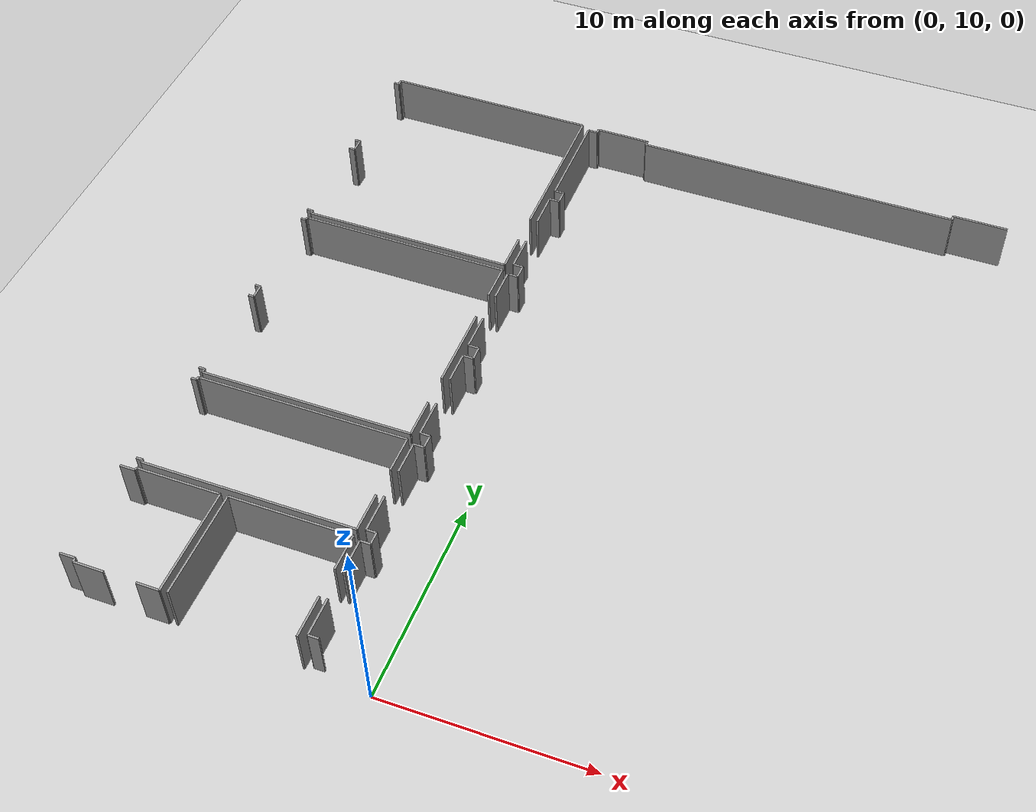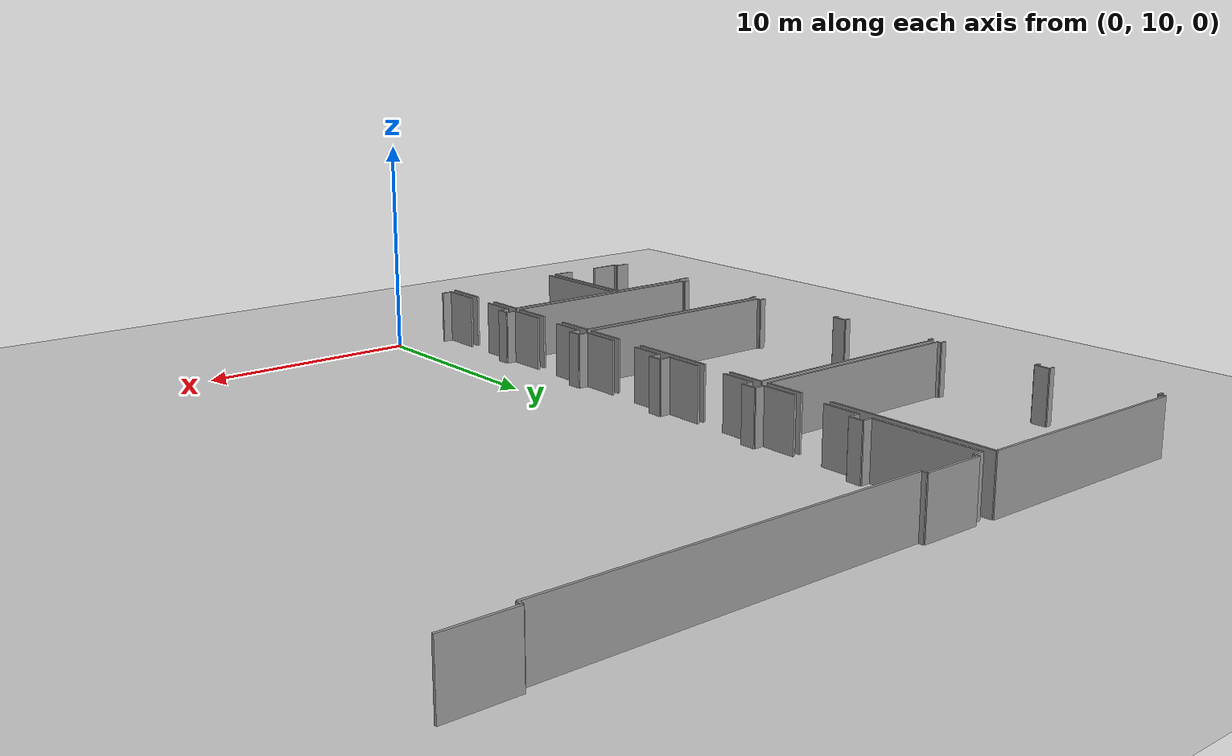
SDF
<sdf version="1.6">
 <world name="default">
  <model name="ground_plane">
   <static>1</static>
   <link name="link">
    <collision name="collision">
     <geometry><plane><normal>0 0 1</normal><size>100 100</size></plane></geometry>
     <surface><friction><ode><mu>100</mu><mu2>50</mu2></ode></friction></surface>
    </collision>
    <visual name="visual">
     <cast_shadows>0</cast_shadows>
     <geometry><plane><normal>0 0 1</normal><size>100 100</size></plane></geometry>
     <material>
      <script><uri>file://media/materials/scripts/gazebo.material</uri><name>Gazebo/Grey</name></script>
     </material>
    </visual>
   </link>
  </model>
  <model name="50015847">
   <static>1</static>
   <link name="Wall_332">
    <collision name="Wall_332_Collision">
     <geometry><box><size>0.508974424162 0.1 2.5</size></box></geometry>
     <pose>0.254487212081 0 1.25 0 0 0</pose>
    </collision>
    <visual name="Wall_332_Visual">
     <pose>0.254487212081 0 1.25 0 0 0</pose>
     <geometry><box><size>0.508974424162 0.1 2.5</size></box></geometry>
     <material>
      <script><uri>file://media/materials/scripts/gazebo.material</uri><name>Gazebo/Grey</name></script>
      <ambient>1 1 1 1</ambient>
     </material>
    </visual>
    <pose>130.048558499 -33.4761275233 0 0 0 3.14159265359</pose>
   </link>
   <link name="Wall_333">
    <collision name="Wall_333_Collision">
     <geometry><box><size>1.85386688361 0.1 2.5</size></box></geometry>
     <pose>0.926933441806 0 1.25 0 0 0</pose>
    </collision>
    <visual name="Wall_333_Visual">
     <pose>0.926933441806 0 1.25 0 0 0</pose>
     <geometry><box><size>1.85386688361 0.1 2.5</size></box></geometry>
     <material>
      <script><uri>file://media/materials/scripts/gazebo.material</uri><name>Gazebo/Grey</name></script>
      <ambient>1 1 1 1</ambient>
     </material>
    </visual>
    <pose>129.539584075 -33.4761275233 0 0 0 1.57079632679</pose>
   </link>
   <link name="Wall_334">
    <collision name="Wall_334_Collision">
     <geometry><box><size>1.62454873646 0.1 2.5</size></box></geometry>
     <pose>0.812274368231 0 1.25 0 0 0</pose>
    </collision>
    <visual name="Wall_334_Visual">
     <pose>0.812274368231 0 1.25 0 0 0</pose>
     <geometry><box><size>1.62454873646 0.1 2.5</size></box></geometry>
     <material>
      <script><uri>file://media/materials/scripts/gazebo.material</uri><name>Gazebo/Grey</name></script>
      <ambient>1 1 1 1</ambient>
     </material>
    </visual>
    <pose>129.539584075 -30.1288961204 0 0 0 1.57079632679</pose>
   </link>
   <link name="Wall_335">
    <collision name="Wall_335_Collision">
     <geometry><box><size>0.488890018813 0.1 2.5</size></box></geometry>
     <pose>0.244445009407 0 1.25 0 0 0</pose>
    </collision>
    <visual name="Wall_335_Visual">
     <pose>0.244445009407 0 1.25 0 0 0</pose>
     <geometry><box><size>0.488890018813 0.1 2.5</size></box></geometry>
     <material>
      <script><uri>file://media/materials/scripts/gazebo.material</uri><name>Gazebo/Grey</name></script>
      <ambient>1 1 1 1</ambient>
     </material>
    </visual>
    <pose>129.539584075 -28.5043473839 0 0 0 0.0</pose>
   </link>
   <link name="Wall_336">
    <collision name="Wall_336_Collision">
     <geometry><box><size>0.614989576448 0.1 2.5</size></box></geometry>
     <pose>0.307494788224 0 1.25 0 0 0</pose>
    </collision>
    <visual name="Wall_336_Visual">
     <pose>0.307494788224 0 1.25 0 0 0</pose>
     <geometry><box><size>0.614989576448 0.1 2.5</size></box></geometry>
     <material>
      <script><uri>file://media/materials/scripts/gazebo.material</uri><name>Gazebo/Grey</name></script>
      <ambient>1 1 1 1</ambient>
     </material>
    </visual>
    <pose>130.028474094 -28.5043473839 0 0 0 1.57079632679</pose>
   </link>
   <link name="Wall_337">
    <collision name="Wall_337_Collision">
     <geometry><box><size>0.490415416688 0.1 2.5</size></box></geometry>
     <pose>0.245207708344 0 1.25 0 0 0</pose>
    </collision>
    <visual name="Wall_337_Visual">
     <pose>0.245207708344 0 1.25 0 0 0</pose>
     <geometry><box><size>0.490415416688 0.1 2.5</size></box></geometry>
     <material>
      <script><uri>file://media/materials/scripts/gazebo.material</uri><name>Gazebo/Grey</name></script>
      <ambient>1 1 1 1</ambient>
     </material>
    </visual>
    <pose>130.028474094 -27.8893578075 0 0 0 3.14159265359</pose>
   </link>
   <link name="Wall_338">
    <collision name="Wall_338_Collision">
     <geometry><box><size>1.87242589109 0.1 2.5</size></box></geometry>
     <pose>0.936212945543 0 1.25 0 0 0</pose>
    </collision>
    <visual name="Wall_338_Visual">
     <pose>0.936212945543 0 1.25 0 0 0</pose>
     <geometry><box><size>1.87242589109 0.1 2.5</size></box></geometry>
     <material>
      <script><uri>file://media/materials/scripts/gazebo.material</uri><name>Gazebo/Grey</name></script>
      <ambient>1 1 1 1</ambient>
     </material>
    </visual>
    <pose>129.538058677 -27.8893578075 0 0 0 1.57079632679</pose>
   </link>
   <link name="Wall_339">
    <collision name="Wall_339_Collision">
     <geometry><box><size>1.63395535669 0.1 2.5</size></box></geometry>
     <pose>0.816977678344 0 1.25 0 0 0</pose>
    </collision>
    <visual name="Wall_339_Visual">
     <pose>0.816977678344 0 1.25 0 0 0</pose>
     <geometry><box><size>1.63395535669 0.1 2.5</size></box></geometry>
     <material>
      <script><uri>file://media/materials/scripts/gazebo.material</uri><name>Gazebo/Grey</name></script>
      <ambient>1 1 1 1</ambient>
     </material>
    </visual>
    <pose>129.538058677 -24.5650073728 0 0 0 1.57079632679</pose>
   </link>
   <link name="Wall_340">
    <collision name="Wall_340_Collision">
     <geometry><box><size>0.502618599685 0.1 2.5</size></box></geometry>
     <pose>0.251309299842 0 1.25 0 0 0</pose>
    </collision>
    <visual name="Wall_340_Visual">
     <pose>0.251309299842 0 1.25 0 0 0</pose>
     <geometry><box><size>0.502618599685 0.1 2.5</size></box></geometry>
     <material>
      <script><uri>file://media/materials/scripts/gazebo.material</uri><name>Gazebo/Grey</name></script>
      <ambient>1 1 1 1</ambient>
     </material>
    </visual>
    <pose>129.538058677 -22.9310520161 0 0 0 0.0</pose>
   </link>
   <link name="Wall_341">
    <collision name="Wall_341_Collision">
     <geometry><box><size>0.679310520161 0.1 2.5</size></box></geometry>
     <pose>0.33965526008 0 1.25 0 0 0</pose>
    </collision>
    <visual name="Wall_341_Visual">
     <pose>0.33965526008 0 1.25 0 0 0</pose>
     <geometry><box><size>0.679310520161 0.1 2.5</size></box></geometry>
     <material>
      <script><uri>file://media/materials/scripts/gazebo.material</uri><name>Gazebo/Grey</name></script>
      <ambient>1 1 1 1</ambient>
     </material>
    </visual>
    <pose>130.040677277 -22.9310520161 0 0 0 1.57079632679</pose>
   </link>
   <link name="Wall_342">
    <collision name="Wall_342_Collision">
     <geometry><box><size>0.491432348604 0.1 2.5</size></box></geometry>
     <pose>0.245716174302 0 1.25 0 0 0</pose>
    </collision>
    <visual name="Wall_342_Visual">
     <pose>0.245716174302 0 1.25 0 0 0</pose>
     <geometry><box><size>0.491432348604 0.1 2.5</size></box></geometry>
     <material>
      <script><uri>file://media/materials/scripts/gazebo.material</uri><name>Gazebo/Grey</name></script>
      <ambient>1 1 1 1</ambient>
     </material>
    </visual>
    <pose>130.040677277 -22.2517414959 0 0 0 3.14159265359</pose>
   </link>
   <link name="Wall_343">
    <collision name="Wall_343_Collision">
     <geometry><box><size>1.82132506229 0.1 2.5</size></box></geometry>
     <pose>0.910662531144 0 1.25 0 0 0</pose>
    </collision>
    <visual name="Wall_343_Visual">
     <pose>0.910662531144 0 1.25 0 0 0</pose>
     <geometry><box><size>1.82132506229 0.1 2.5</size></box></geometry>
     <material>
      <script><uri>file://media/materials/scripts/gazebo.material</uri><name>Gazebo/Grey</name></script>
      <ambient>1 1 1 1</ambient>
     </material>
    </visual>
    <pose>129.549244928 -22.2517414959 0 0 0 1.57079632679</pose>
   </link>
   <link name="Wall_344">
    <collision name="Wall_344_Collision">
     <geometry><box><size>1.55793969594 0.1 2.5</size></box></geometry>
     <pose>0.778969847969 0 1.25 0 0 0</pose>
    </collision>
    <visual name="Wall_344_Visual">
     <pose>0.778969847969 0 1.25 0 0 0</pose>
     <geometry><box><size>1.55793969594 0.1 2.5</size></box></geometry>
     <material>
      <script><uri>file://media/materials/scripts/gazebo.material</uri><name>Gazebo/Grey</name></script>
      <ambient>1 1 1 1</ambient>
     </material>
    </visual>
    <pose>129.549244928 -18.8915442111 0 0 0 1.57079632679</pose>
   </link>
   <link name="Wall_345">
    <collision name="Wall_345_Collision">
     <geometry><box><size>0.513296384807 0.1 2.5</size></box></geometry>
     <pose>0.256648192404 0 1.25 0 0 0</pose>
    </collision>
    <visual name="Wall_345_Visual">
     <pose>0.256648192404 0 1.25 0 0 0</pose>
     <geometry><box><size>0.513296384807 0.1 2.5</size></box></geometry>
     <material>
      <script><uri>file://media/materials/scripts/gazebo.material</uri><name>Gazebo/Grey</name></script>
      <ambient>1 1 1 1</ambient>
     </material>
    </visual>
    <pose>129.549244928 -17.3336045152 0 0 0 0.0</pose>
   </link>
   <link name="Wall_346">
    <collision name="Wall_346_Collision">
     <geometry><box><size>0.678547821223 0.1 2.5</size></box></geometry>
     <pose>0.339273910612 0 1.25 0 0 0</pose>
    </collision>
    <visual name="Wall_346_Visual">
     <pose>0.339273910612 0 1.25 0 0 0</pose>
     <geometry><box><size>0.678547821223 0.1 2.5</size></box></geometry>
     <material>
      <script><uri>file://media/materials/scripts/gazebo.material</uri><name>Gazebo/Grey</name></script>
      <ambient>1 1 1 1</ambient>
     </material>
    </visual>
    <pose>130.062541313 -17.3336045152 0 0 0 1.57079632679</pose>
   </link>
   <link name="Wall_347">
    <collision name="Wall_347_Collision">
     <geometry><box><size>0.535414653989 0.1 2.5</size></box></geometry>
     <pose>0.267707326994 0 1.25 0 0 0</pose>
    </collision>
    <visual name="Wall_347_Visual">
     <pose>0.267707326994 0 1.25 0 0 0</pose>
     <geometry><box><size>0.535414653989 0.1 2.5</size></box></geometry>
     <material>
      <script><uri>file://media/materials/scripts/gazebo.material</uri><name>Gazebo/Grey</name></script>
      <ambient>1 1 1 1</ambient>
     </material>
    </visual>
    <pose>130.062541313 -16.655056694 0 0 0 3.14159265359</pose>
   </link>
   <link name="Wall_348">
    <collision name="Wall_348_Collision">
     <geometry><box><size>1.81802003356 0.1 2.5</size></box></geometry>
     <pose>0.909010016779 0 1.25 0 0 0</pose>
    </collision>
    <visual name="Wall_348_Visual">
     <pose>0.909010016779 0 1.25 0 0 0</pose>
     <geometry><box><size>1.81802003356 0.1 2.5</size></box></geometry>
     <material>
      <script><uri>file://media/materials/scripts/gazebo.material</uri><name>Gazebo/Grey</name></script>
      <ambient>1 1 1 1</ambient>
     </material>
    </visual>
    <pose>129.527126659 -16.655056694 0 0 0 1.57079632679</pose>
   </link>
   <link name="Wall_349">
    <collision name="Wall_349_Collision">
     <geometry><box><size>1.6070066609 0.1 2.5</size></box></geometry>
     <pose>0.803503330452 0 1.25 0 0 0</pose>
    </collision>
    <visual name="Wall_349_Visual">
     <pose>0.803503330452 0 1.25 0 0 0</pose>
     <geometry><box><size>1.6070066609 0.1 2.5</size></box></geometry>
     <material>
      <script><uri>file://media/materials/scripts/gazebo.material</uri><name>Gazebo/Grey</name></script>
      <ambient>1 1 1 1</ambient>
     </material>
    </visual>
    <pose>129.527126659 -13.3223165709 0 0 0 1.57079632679</pose>
   </link>
   <link name="Wall_350">
    <collision name="Wall_350_Collision">
     <geometry><box><size>0.505923628413 0.1 2.5</size></box></geometry>
     <pose>0.252961814207 0 1.25 0 0 0</pose>
    </collision>
    <visual name="Wall_350_Visual">
     <pose>0.252961814207 0 1.25 0 0 0</pose>
     <geometry><box><size>0.505923628413 0.1 2.5</size></box></geometry>
     <material>
      <script><uri>file://media/materials/scripts/gazebo.material</uri><name>Gazebo/Grey</name></script>
      <ambient>1 1 1 1</ambient>
     </material>
    </visual>
    <pose>129.527126659 -11.71530991 0 0 0 0.0</pose>
   </link>
   <link name="Wall_351">
    <collision name="Wall_351_Collision">
     <geometry><box><size>0.69939492551 0.1 2.5</size></box></geometry>
     <pose>0.349697462755 0 1.25 0 0 0</pose>
    </collision>
    <visual name="Wall_351_Visual">
     <pose>0.349697462755 0 1.25 0 0 0</pose>
     <geometry><box><size>0.69939492551 0.1 2.5</size></box></geometry>
     <material>
      <script><uri>file://media/materials/scripts/gazebo.material</uri><name>Gazebo/Grey</name></script>
      <ambient>1 1 1 1</ambient>
     </material>
    </visual>
    <pose>130.033050287 -11.71530991 0 0 0 1.57079632679</pose>
   </link>
   <link name="Wall_352">
    <collision name="Wall_352_Collision">
     <geometry><box><size>0.491940814562 0.1 2.5</size></box></geometry>
     <pose>0.245970407281 0 1.25 0 0 0</pose>
    </collision>
    <visual name="Wall_352_Visual">
     <pose>0.245970407281 0 1.25 0 0 0</pose>
     <geometry><box><size>0.491940814562 0.1 2.5</size></box></geometry>
     <material>
      <script><uri>file://media/materials/scripts/gazebo.material</uri><name>Gazebo/Grey</name></script>
      <ambient>1 1 1 1</ambient>
     </material>
    </visual>
    <pose>130.033050287 -11.0159149845 0 0 0 3.14159265359</pose>
   </link>
   <link name="Wall_353">
    <collision name="Wall_353_Collision">
     <geometry><box><size>1.6995474653 0.1 2.5</size></box></geometry>
     <pose>0.849773732649 0 1.25 0 0 0</pose>
    </collision>
    <visual name="Wall_353_Visual">
     <pose>0.849773732649 0 1.25 0 0 0</pose>
     <geometry><box><size>1.6995474653 0.1 2.5</size></box></geometry>
     <material>
      <script><uri>file://media/materials/scripts/gazebo.material</uri><name>Gazebo/Grey</name></script>
      <ambient>1 1 1 1</ambient>
     </material>
    </visual>
    <pose>129.541109473 -11.0159149845 0 0 0 1.57079632679</pose>
   </link>
   <link name="Wall_354">
    <collision name="Wall_354_Collision">
     <geometry><box><size>1.72242843342 0.1 2.5</size></box></geometry>
     <pose>0.861214216708 0 1.25 0 0 0</pose>
    </collision>
    <visual name="Wall_354_Visual">
     <pose>0.861214216708 0 1.25 0 0 0</pose>
     <geometry><box><size>1.72242843342 0.1 2.5</size></box></geometry>
     <material>
      <script><uri>file://media/materials/scripts/gazebo.material</uri><name>Gazebo/Grey</name></script>
      <ambient>1 1 1 1</ambient>
     </material>
    </visual>
    <pose>129.541109473 -7.81232521483 0 0 0 1.57079632679</pose>
   </link>
   <link name="Wall_355">
    <collision name="Wall_355_Collision">
     <geometry><box><size>0.50388976458 0.1 2.5</size></box></geometry>
     <pose>0.25194488229 0 1.25 0 0 0</pose>
    </collision>
    <visual name="Wall_355_Visual">
     <pose>0.25194488229 0 1.25 0 0 0</pose>
     <geometry><box><size>0.50388976458 0.1 2.5</size></box></geometry>
     <material>
      <script><uri>file://media/materials/scripts/gazebo.material</uri><name>Gazebo/Grey</name></script>
      <ambient>1 1 1 1</ambient>
     </material>
    </visual>
    <pose>129.541109473 -6.08989678141 0 0 0 0.0</pose>
   </link>
   <link name="Wall_356">
    <collision name="Wall_356_Collision">
     <geometry><box><size>0.656683785021 0.1 2.5</size></box></geometry>
     <pose>0.32834189251 0 1.25 0 0 0</pose>
    </collision>
    <visual name="Wall_356_Visual">
     <pose>0.32834189251 0 1.25 0 0 0</pose>
     <geometry><box><size>0.656683785021 0.1 2.5</size></box></geometry>
     <material>
      <script><uri>file://media/materials/scripts/gazebo.material</uri><name>Gazebo/Grey</name></script>
      <ambient>1 1 1 1</ambient>
     </material>
    </visual>
    <pose>130.044999237 -6.08989678141 0 0 0 1.57079632679</pose>
   </link>
   <link name="Wall_357">
    <collision name="Wall_357_Collision">
     <geometry><box><size>0.465500584736 0.1 2.5</size></box></geometry>
     <pose>0.232750292368 0 1.25 0 0 0</pose>
    </collision>
    <visual name="Wall_357_Visual">
     <pose>0.232750292368 0 1.25 0 0 0</pose>
     <geometry><box><size>0.465500584736 0.1 2.5</size></box></geometry>
     <material>
      <script><uri>file://media/materials/scripts/gazebo.material</uri><name>Gazebo/Grey</name></script>
      <ambient>1 1 1 1</ambient>
     </material>
    </visual>
    <pose>130.044999237 -5.43321299639 0 0 0 3.14159265359</pose>
   </link>
   <link name="Wall_358">
    <collision name="Wall_358_Collision">
     <geometry><box><size>4.94711954035 0.1 2.5</size></box></geometry>
     <pose>2.47355977017 0 1.25 0 0 0</pose>
    </collision>
    <visual name="Wall_358_Visual">
     <pose>2.47355977017 0 1.25 0 0 0</pose>
     <geometry><box><size>4.94711954035 0.1 2.5</size></box></geometry>
     <material>
      <script><uri>file://media/materials/scripts/gazebo.material</uri><name>Gazebo/Grey</name></script>
      <ambient>1 1 1 1</ambient>
     </material>
    </visual>
    <pose>129.579498653 -5.43321299639 0 0 0 1.57079632679</pose>
   </link>
   <link name="Wall_359">
    <collision name="Wall_359_Collision">
     <geometry><box><size>0.488381552855 0.1 2.5</size></box></geometry>
     <pose>0.244190776428 0 1.25 0 0 0</pose>
    </collision>
    <visual name="Wall_359_Visual">
     <pose>0.244190776428 0 1.25 0 0 0</pose>
     <geometry><box><size>0.488381552855 0.1 2.5</size></box></geometry>
     <material>
      <script><uri>file://media/materials/scripts/gazebo.material</uri><name>Gazebo/Grey</name></script>
      <ambient>1 1 1 1</ambient>
     </material>
    </visual>
    <pose>129.579498653 -0.486093456043 0 0 0 0.0</pose>
   </link>
   <link name="Wall_360">
    <collision name="Wall_360_Collision">
     <geometry><box><size>0.223470788631 0.1 2.5</size></box></geometry>
     <pose>0.111735394315 0 1.25 0 0 0</pose>
    </collision>
    <visual name="Wall_360_Visual">
     <pose>0.111735394315 0 1.25 0 0 0</pose>
     <geometry><box><size>0.223470788631 0.1 2.5</size></box></geometry>
     <material>
      <script><uri>file://media/materials/scripts/gazebo.material</uri><name>Gazebo/Grey</name></script>
      <ambient>1 1 1 1</ambient>
     </material>
    </visual>
    <pose>130.067880205 -0.486093456043 0 0 0 1.57079632679</pose>
   </link>
   <link name="Wall_361">
    <collision name="Wall_361_Collision">
     <geometry><box><size>2.68012406569 0.1 2.5</size></box></geometry>
     <pose>1.34006203285 0 1.25 0 0 0</pose>
    </collision>
    <visual name="Wall_361_Visual">
     <pose>1.34006203285 0 1.25 0 0 0</pose>
     <geometry><box><size>2.68012406569 0.1 2.5</size></box></geometry>
     <material>
      <script><uri>file://media/materials/scripts/gazebo.material</uri><name>Gazebo/Grey</name></script>
      <ambient>1 1 1 1</ambient>
     </material>
    </visual>
    <pose>130.067880205 -0.262622667412 0 0 0 0.0</pose>
   </link>
   <link name="Wall_362">
    <collision name="Wall_362_Collision">
     <geometry><box><size>0.242284029084 0.1 2.5</size></box></geometry>
     <pose>0.121142014542 0 1.25 0 0 0</pose>
    </collision>
    <visual name="Wall_362_Visual">
     <pose>0.121142014542 0 1.25 0 0 0</pose>
     <geometry><box><size>0.242284029084 0.1 2.5</size></box></geometry>
     <material>
      <script><uri>file://media/materials/scripts/gazebo.material</uri><name>Gazebo/Grey</name></script>
      <ambient>1 1 1 1</ambient>
     </material>
    </visual>
    <pose>132.748004271 -0.262622667412 0 0 0 -1.57079632679</pose>
   </link>
   <link name="Wall_363">
    <collision name="Wall_363_Collision">
     <geometry><box><size>16.0776935984 0.1 2.5</size></box></geometry>
     <pose>8.03884679921 0 1.25 0 0 0</pose>
    </collision>
    <visual name="Wall_363_Visual">
     <pose>8.03884679921 0 1.25 0 0 0</pose>
     <geometry><box><size>16.0776935984 0.1 2.5</size></box></geometry>
     <material>
      <script><uri>file://media/materials/scripts/gazebo.material</uri><name>Gazebo/Grey</name></script>
      <ambient>1 1 1 1</ambient>
     </material>
    </visual>
    <pose>132.748004271 -0.504906696497 0 0 0 0.0</pose>
   </link>
   <link name="Wall_364">
    <collision name="Wall_364_Collision">
     <geometry><box><size>0.259826104642 0.1 2.5</size></box></geometry>
     <pose>0.129913052321 0 1.25 0 0 0</pose>
    </collision>
    <visual name="Wall_364_Visual">
     <pose>0.129913052321 0 1.25 0 0 0</pose>
     <geometry><box><size>0.259826104642 0.1 2.5</size></box></geometry>
     <material>
      <script><uri>file://media/materials/scripts/gazebo.material</uri><name>Gazebo/Grey</name></script>
      <ambient>1 1 1 1</ambient>
     </material>
    </visual>
    <pose>148.82569787 -0.504906696497 0 0 0 1.57079632679</pose>
   </link>
   <link name="Wall_365">
    <collision name="Wall_365_Collision">
     <geometry><box><size>2.72232674022 0.1 2.5</size></box></geometry>
     <pose>1.36116337011 0 1.25 0 0 0</pose>
    </collision>
    <visual name="Wall_365_Visual">
     <pose>1.36116337011 0 1.25 0 0 0</pose>
     <geometry><box><size>2.72232674022 0.1 2.5</size></box></geometry>
     <material>
      <script><uri>file://media/materials/scripts/gazebo.material</uri><name>Gazebo/Grey</name></script>
      <ambient>1 1 1 1</ambient>
     </material>
    </visual>
    <pose>148.82569787 -0.245080591854 0 0 0 0.0</pose>
   </link>
   <link name="Wall_414">
    <collision name="Wall_414_Collision">
     <geometry><box><size>0.289062897239 0.1 2.5</size></box></geometry>
     <pose>0.14453144862 0 1.25 0 0 0</pose>
    </collision>
    <visual name="Wall_414_Visual">
     <pose>0.14453144862 0 1.25 0 0 0</pose>
     <geometry><box><size>0.289062897239 0.1 2.5</size></box></geometry>
     <material>
      <script><uri>file://media/materials/scripts/gazebo.material</uri><name>Gazebo/Grey</name></script>
      <ambient>1 1 1 1</ambient>
     </material>
    </visual>
    <pose>118.73697056 -11.009813393 0 0 0 3.14159265359</pose>
   </link>
   <link name="Wall_415">
    <collision name="Wall_415_Collision">
     <geometry><box><size>0.295164488737 0.1 2.5</size></box></geometry>
     <pose>0.147582244369 0 1.25 0 0 0</pose>
    </collision>
    <visual name="Wall_415_Visual">
     <pose>0.147582244369 0 1.25 0 0 0</pose>
     <geometry><box><size>0.295164488737 0.1 2.5</size></box></geometry>
     <material>
      <script><uri>file://media/materials/scripts/gazebo.material</uri><name>Gazebo/Grey</name></script>
      <ambient>1 1 1 1</ambient>
     </material>
    </visual>
    <pose>118.447907663 -6.11964203997 0 0 0 0.0</pose>
   </link>
   <link name="Wall_416">
    <collision name="Wall_416_Collision">
     <geometry><box><size>0.688717140387 0.1 2.5</size></box></geometry>
     <pose>0.344358570194 0 1.25 0 0 0</pose>
    </collision>
    <visual name="Wall_416_Visual">
     <pose>0.344358570194 0 1.25 0 0 0</pose>
     <geometry><box><size>0.688717140387 0.1 2.5</size></box></geometry>
     <material>
      <script><uri>file://media/materials/scripts/gazebo.material</uri><name>Gazebo/Grey</name></script>
      <ambient>1 1 1 1</ambient>
     </material>
    </visual>
    <pose>118.743072151 -6.11964203997 0 0 0 1.57079632679</pose>
   </link>
   <link name="Wall_417">
    <collision name="Wall_417_Collision">
     <geometry><box><size>0.283978237657 0.1 2.5</size></box></geometry>
     <pose>0.141989118828 0 1.25 0 0 0</pose>
    </collision>
    <visual name="Wall_417_Visual">
     <pose>0.141989118828 0 1.25 0 0 0</pose>
     <geometry><box><size>0.283978237657 0.1 2.5</size></box></geometry>
     <material>
      <script><uri>file://media/materials/scripts/gazebo.material</uri><name>Gazebo/Grey</name></script>
      <ambient>1 1 1 1</ambient>
     </material>
    </visual>
    <pose>118.743072151 -5.43092489958 0 0 0 3.14159265359</pose>
   </link>
   <link name="Wall_418">
    <collision name="Wall_418_Collision">
     <geometry><box><size>0.267707326994 0.1 2.5</size></box></geometry>
     <pose>0.133853663497 0 1.25 0 0 0</pose>
    </collision>
    <visual name="Wall_418_Visual">
     <pose>0.133853663497 0 1.25 0 0 0</pose>
     <geometry><box><size>0.267707326994 0.1 2.5</size></box></geometry>
     <material>
      <script><uri>file://media/materials/scripts/gazebo.material</uri><name>Gazebo/Grey</name></script>
      <ambient>1 1 1 1</ambient>
     </material>
    </visual>
    <pose>118.459093914 -0.502110133727 0 0 0 0.0</pose>
   </link>
   <link name="Wall_419">
    <collision name="Wall_419_Collision">
     <geometry><box><size>0.273300452535 0.1 2.5</size></box></geometry>
     <pose>0.136650226267 0 1.25 0 0 0</pose>
    </collision>
    <visual name="Wall_419_Visual">
     <pose>0.136650226267 0 1.25 0 0 0</pose>
     <geometry><box><size>0.273300452535 0.1 2.5</size></box></geometry>
     <material>
      <script><uri>file://media/materials/scripts/gazebo.material</uri><name>Gazebo/Grey</name></script>
      <ambient>1 1 1 1</ambient>
     </material>
    </visual>
    <pose>118.726801241 -0.502110133727 0 0 0 1.57079632679</pose>
   </link>
   <link name="Wall_420">
    <collision name="Wall_420_Collision">
     <geometry><box><size>10.4314333655 0.1 2.5</size></box></geometry>
     <pose>5.21571668277 0 1.25 0 0 0</pose>
    </collision>
    <visual name="Wall_420_Visual">
     <pose>5.21571668277 0 1.25 0 0 0</pose>
     <geometry><box><size>10.4314333655 0.1 2.5</size></box></geometry>
     <material>
      <script><uri>file://media/materials/scripts/gazebo.material</uri><name>Gazebo/Grey</name></script>
      <ambient>1 1 1 1</ambient>
     </material>
    </visual>
    <pose>118.726801241 -0.228809681192 0 0 0 0.0</pose>
   </link>
   <link name="Wall_421">
    <collision name="Wall_421_Collision">
     <geometry><box><size>7.59037982407 0.1 2.5</size></box></geometry>
     <pose>3.79518991204 0 1.25 0 0 0</pose>
    </collision>
    <visual name="Wall_421_Visual">
     <pose>3.79518991204 0 1.25 0 0 0</pose>
     <geometry><box><size>7.59037982407 0.1 2.5</size></box></geometry>
     <material>
      <script><uri>file://media/materials/scripts/gazebo.material</uri><name>Gazebo/Grey</name></script>
      <ambient>1 1 1 1</ambient>
     </material>
    </visual>
    <pose>129.158234606 -0.228809681192 0 0 0 -1.57079632679</pose>
   </link>
   <link name="Wall_422">
    <collision name="Wall_422_Collision">
     <geometry><box><size>1.84293486551 0.1 2.5</size></box></geometry>
     <pose>0.921467432755 0 1.25 0 0 0</pose>
    </collision>
    <visual name="Wall_422_Visual">
     <pose>0.921467432755 0 1.25 0 0 0</pose>
     <geometry><box><size>1.84293486551 0.1 2.5</size></box></geometry>
     <material>
      <script><uri>file://media/materials/scripts/gazebo.material</uri><name>Gazebo/Grey</name></script>
      <ambient>1 1 1 1</ambient>
     </material>
    </visual>
    <pose>129.158234606 -9.35170590329 0 0 0 -1.57079632679</pose>
   </link>
   <link name="Wall_423">
    <collision name="Wall_423_Collision">
     <geometry><box><size>10.4024508059 0.1 2.5</size></box></geometry>
     <pose>5.20122540296 0 1.25 0 0 0</pose>
    </collision>
    <visual name="Wall_423_Visual">
     <pose>5.20122540296 0 1.25 0 0 0</pose>
     <geometry><box><size>10.4024508059 0.1 2.5</size></box></geometry>
     <material>
      <script><uri>file://media/materials/scripts/gazebo.material</uri><name>Gazebo/Grey</name></script>
      <ambient>1 1 1 1</ambient>
     </material>
    </visual>
    <pose>129.158234606 -11.1946407688 0 0 0 3.14159265359</pose>
   </link>
   <link name="Wall_424">
    <collision name="Wall_424_Collision">
     <geometry><box><size>0.185782391157 0.1 2.5</size></box></geometry>
     <pose>0.0928911955787 0 1.25 0 0 0</pose>
    </collision>
    <visual name="Wall_424_Visual">
     <pose>0.0928911955787 0 1.25 0 0 0</pose>
     <geometry><box><size>0.185782391157 0.1 2.5</size></box></geometry>
     <material>
      <script><uri>file://media/materials/scripts/gazebo.material</uri><name>Gazebo/Grey</name></script>
      <ambient>1 1 1 1</ambient>
     </material>
    </visual>
    <pose>118.7557838 -11.1946407688 0 0 0 1.67223512994</pose>
   </link>
   <link name="Wall_425">
    <collision name="Wall_425_Collision">
     <geometry><box><size>10.4553312656 0.1 2.5</size></box></geometry>
     <pose>5.22766563279 0 1.25 0 0 0</pose>
    </collision>
    <visual name="Wall_425_Visual">
     <pose>5.22766563279 0 1.25 0 0 0</pose>
     <geometry><box><size>10.4553312656 0.1 2.5</size></box></geometry>
     <material>
      <script><uri>file://media/materials/scripts/gazebo.material</uri><name>Gazebo/Grey</name></script>
      <ambient>1 1 1 1</ambient>
     </material>
    </visual>
    <pose>118.725275843 -11.5434484161 0 0 0 0.0</pose>
   </link>
   <link name="Wall_426">
    <collision name="Wall_426_Collision">
     <geometry><box><size>1.79361366756 0.1 2.5</size></box></geometry>
     <pose>0.896806833782 0 1.25 0 0 0</pose>
    </collision>
    <visual name="Wall_426_Visual">
     <pose>0.896806833782 0 1.25 0 0 0</pose>
     <geometry><box><size>1.79361366756 0.1 2.5</size></box></geometry>
     <material>
      <script><uri>file://media/materials/scripts/gazebo.material</uri><name>Gazebo/Grey</name></script>
      <ambient>1 1 1 1</ambient>
     </material>
    </visual>
    <pose>129.180607108 -11.5434484161 0 0 0 -1.57079632679</pose>
   </link>
   <link name="Wall_427">
    <collision name="Wall_427_Collision">
     <geometry><box><size>4.11221843698 0.1 2.5</size></box></geometry>
     <pose>2.05610921849 0 1.25 0 0 0</pose>
    </collision>
    <visual name="Wall_427_Visual">
     <pose>2.05610921849 0 1.25 0 0 0</pose>
     <geometry><box><size>4.11221843698 0.1 2.5</size></box></geometry>
     <material>
      <script><uri>file://media/materials/scripts/gazebo.material</uri><name>Gazebo/Grey</name></script>
      <ambient>1 1 1 1</ambient>
     </material>
    </visual>
    <pose>129.180607108 -14.8512737072 0 0 0 -1.57079632679</pose>
   </link>
   <link name="Wall_428">
    <collision name="Wall_428_Collision">
     <geometry><box><size>1.95301774546 0.1 2.5</size></box></geometry>
     <pose>0.976508872731 0 1.25 0 0 0</pose>
    </collision>
    <visual name="Wall_428_Visual">
     <pose>0.976508872731 0 1.25 0 0 0</pose>
     <geometry><box><size>1.95301774546 0.1 2.5</size></box></geometry>
     <material>
      <script><uri>file://media/materials/scripts/gazebo.material</uri><name>Gazebo/Grey</name></script>
      <ambient>1 1 1 1</ambient>
     </material>
    </visual>
    <pose>129.180607108 -20.4843138252 0 0 0 -1.57079632679</pose>
   </link>
   <link name="Wall_429">
    <collision name="Wall_429_Collision">
     <geometry><box><size>10.4220267453 0.1 2.5</size></box></geometry>
     <pose>5.21101337265 0 1.25 0 0 0</pose>
    </collision>
    <visual name="Wall_429_Visual">
     <pose>5.21101337265 0 1.25 0 0 0</pose>
     <geometry><box><size>10.4220267453 0.1 2.5</size></box></geometry>
     <material>
      <script><uri>file://media/materials/scripts/gazebo.material</uri><name>Gazebo/Grey</name></script>
      <ambient>1 1 1 1</ambient>
     </material>
    </visual>
    <pose>129.180607108 -22.4373315707 0 0 0 3.14159265359</pose>
   </link>
   <link name="Wall_430">
    <collision name="Wall_430_Collision">
     <geometry><box><size>0.206945644989 0.1 2.5</size></box></geometry>
     <pose>0.103472822495 0 1.25 0 0 0</pose>
    </collision>
    <visual name="Wall_430_Visual">
     <pose>0.103472822495 0 1.25 0 0 0</pose>
     <geometry><box><size>0.206945644989 0.1 2.5</size></box></geometry>
     <material>
      <script><uri>file://media/materials/scripts/gazebo.material</uri><name>Gazebo/Grey</name></script>
      <ambient>1 1 1 1</ambient>
     </material>
    </visual>
    <pose>118.758580363 -22.4373315707 0 0 0 1.57079632679</pose>
   </link>
   <link name="Wall_431">
    <collision name="Wall_431_Collision">
     <geometry><box><size>0.299232216403 0.1 2.5</size></box></geometry>
     <pose>0.149616108202 0 1.25 0 0 0</pose>
    </collision>
    <visual name="Wall_431_Visual">
     <pose>0.149616108202 0 1.25 0 0 0</pose>
     <geometry><box><size>0.299232216403 0.1 2.5</size></box></geometry>
     <material>
      <script><uri>file://media/materials/scripts/gazebo.material</uri><name>Gazebo/Grey</name></script>
      <ambient>1 1 1 1</ambient>
     </material>
    </visual>
    <pose>118.758580363 -22.2303859257 0 0 0 3.14159265359</pose>
   </link>
   <link name="Wall_432">
    <collision name="Wall_432_Collision">
     <geometry><box><size>0.278385112117 0.1 2.5</size></box></geometry>
     <pose>0.139192556058 0 1.25 0 0 0</pose>
    </collision>
    <visual name="Wall_432_Visual">
     <pose>0.139192556058 0 1.25 0 0 0</pose>
     <geometry><box><size>0.278385112117 0.1 2.5</size></box></geometry>
     <material>
      <script><uri>file://media/materials/scripts/gazebo.material</uri><name>Gazebo/Grey</name></script>
      <ambient>1 1 1 1</ambient>
     </material>
    </visual>
    <pose>118.459348147 -17.3328418162 0 0 0 0.0</pose>
   </link>
   <link name="Wall_433">
    <collision name="Wall_433_Collision">
     <geometry><box><size>0.70498805105 0.1 2.5</size></box></geometry>
     <pose>0.352494025525 0 1.25 0 0 0</pose>
    </collision>
    <visual name="Wall_433_Visual">
     <pose>0.352494025525 0 1.25 0 0 0</pose>
     <geometry><box><size>0.70498805105 0.1 2.5</size></box></geometry>
     <material>
      <script><uri>file://media/materials/scripts/gazebo.material</uri><name>Gazebo/Grey</name></script>
      <ambient>1 1 1 1</ambient>
     </material>
    </visual>
    <pose>118.737733259 -17.3328418162 0 0 0 1.57079632679</pose>
   </link>
   <link name="Wall_434">
    <collision name="Wall_434_Collision">
     <geometry><box><size>0.289571363197 0.1 2.5</size></box></geometry>
     <pose>0.144785681599 0 1.25 0 0 0</pose>
    </collision>
    <visual name="Wall_434_Visual">
     <pose>0.144785681599 0 1.25 0 0 0</pose>
     <geometry><box><size>0.289571363197 0.1 2.5</size></box></geometry>
     <material>
      <script><uri>file://media/materials/scripts/gazebo.material</uri><name>Gazebo/Grey</name></script>
      <ambient>1 1 1 1</ambient>
     </material>
    </visual>
    <pose>118.737733259 -16.6278537652 0 0 0 3.14159265359</pose>
   </link>
   <link name="Wall_435">
    <collision name="Wall_435_Collision">
     <geometry><box><size>0.258300706768 0.1 2.5</size></box></geometry>
     <pose>0.129150353384 0 1.25 0 0 0</pose>
    </collision>
    <visual name="Wall_435_Visual">
     <pose>0.129150353384 0 1.25 0 0 0</pose>
     <geometry><box><size>0.258300706768 0.1 2.5</size></box></geometry>
     <material>
      <script><uri>file://media/materials/scripts/gazebo.material</uri><name>Gazebo/Grey</name></script>
      <ambient>1 1 1 1</ambient>
     </material>
    </visual>
    <pose>118.448161896 -11.7051405908 0 0 0 0.0</pose>
   </link>
   <link name="Wall_436">
    <collision name="Wall_436_Collision">
     <geometry><box><size>0.162782976316 0.1 2.5</size></box></geometry>
     <pose>0.0813914881582 0 1.25 0 0 0</pose>
    </collision>
    <visual name="Wall_436_Visual">
     <pose>0.0813914881582 0 1.25 0 0 0</pose>
     <geometry><box><size>0.162782976316 0.1 2.5</size></box></geometry>
     <material>
      <script><uri>file://media/materials/scripts/gazebo.material</uri><name>Gazebo/Grey</name></script>
      <ambient>1 1 1 1</ambient>
     </material>
    </visual>
    <pose>118.706462602 -11.7051405908 0 0 0 1.4549649538</pose>
   </link>
   <link name="Wall_437">
    <collision name="Wall_437_Collision">
     <geometry><box><size>10.4210098134 0.1 2.5</size></box></geometry>
     <pose>5.2105049067 0 1.25 0 0 0</pose>
    </collision>
    <visual name="Wall_437_Visual">
     <pose>5.2105049067 0 1.25 0 0 0</pose>
     <geometry><box><size>10.4210098134 0.1 2.5</size></box></geometry>
     <material>
      <script><uri>file://media/materials/scripts/gazebo.material</uri><name>Gazebo/Grey</name></script>
      <ambient>1 1 1 1</ambient>
     </material>
    </visual>
    <pose>118.743072151 -22.773936035 0 0 0 0.0</pose>
   </link>
   <link name="Wall_438">
    <collision name="Wall_438_Collision">
     <geometry><box><size>1.83276554635 0.1 2.5</size></box></geometry>
     <pose>0.916382773173 0 1.25 0 0 0</pose>
    </collision>
    <visual name="Wall_438_Visual">
     <pose>0.916382773173 0 1.25 0 0 0</pose>
     <geometry><box><size>1.83276554635 0.1 2.5</size></box></geometry>
     <material>
      <script><uri>file://media/materials/scripts/gazebo.material</uri><name>Gazebo/Grey</name></script>
      <ambient>1 1 1 1</ambient>
     </material>
    </visual>
    <pose>129.164081965 -22.773936035 0 0 0 -1.57079632679</pose>
   </link>
   <link name="Wall_439">
    <collision name="Wall_439_Collision">
     <geometry><box><size>1.9537804444 0.1 2.5</size></box></geometry>
     <pose>0.9768902222 0 1.25 0 0 0</pose>
    </collision>
    <visual name="Wall_439_Visual">
     <pose>0.9768902222 0 1.25 0 0 0</pose>
     <geometry><box><size>1.9537804444 0.1 2.5</size></box></geometry>
     <material>
      <script><uri>file://media/materials/scripts/gazebo.material</uri><name>Gazebo/Grey</name></script>
      <ambient>1 1 1 1</ambient>
     </material>
    </visual>
    <pose>129.164081965 -26.0604057558 0 0 0 -1.57079632679</pose>
   </link>
   <link name="Wall_440">
    <collision name="Wall_440_Collision">
     <geometry><box><size>10.4103320283 0.1 2.5</size></box></geometry>
     <pose>5.20516601414 0 1.25 0 0 0</pose>
    </collision>
    <visual name="Wall_440_Visual">
     <pose>5.20516601414 0 1.25 0 0 0</pose>
     <geometry><box><size>10.4103320283 0.1 2.5</size></box></geometry>
     <material>
      <script><uri>file://media/materials/scripts/gazebo.material</uri><name>Gazebo/Grey</name></script>
      <ambient>1 1 1 1</ambient>
     </material>
    </visual>
    <pose>129.164081965 -28.0141862002 0 0 0 3.14159265359</pose>
   </link>
   <link name="Wall_441">
    <collision name="Wall_441_Collision">
     <geometry><box><size>0.133980779987 0.1 2.5</size></box></geometry>
     <pose>0.0669903899934 0 1.25 0 0 0</pose>
    </collision>
    <visual name="Wall_441_Visual">
     <pose>0.0669903899934 0 1.25 0 0 0</pose>
     <geometry><box><size>0.133980779987 0.1 2.5</size></box></geometry>
     <material>
      <script><uri>file://media/materials/scripts/gazebo.material</uri><name>Gazebo/Grey</name></script>
      <ambient>1 1 1 1</ambient>
     </material>
    </visual>
    <pose>118.753749936 -28.0141862002 0 0 0 1.57079632679</pose>
   </link>
   <link name="Wall_442">
    <collision name="Wall_442_Collision">
     <geometry><box><size>0.313469263233 0.1 2.5</size></box></geometry>
     <pose>0.156734631616 0 1.25 0 0 0</pose>
    </collision>
    <visual name="Wall_442_Visual">
     <pose>0.156734631616 0 1.25 0 0 0</pose>
     <geometry><box><size>0.313469263233 0.1 2.5</size></box></geometry>
     <material>
      <script><uri>file://media/materials/scripts/gazebo.material</uri><name>Gazebo/Grey</name></script>
      <ambient>1 1 1 1</ambient>
     </material>
    </visual>
    <pose>118.753749936 -27.8802054202 0 0 0 3.14159265359</pose>
   </link>
   <link name="Wall_443">
    <collision name="Wall_443_Collision">
     <geometry><box><size>0.28041897595 0.1 2.5</size></box></geometry>
     <pose>0.140209487975 0 1.25 0 0 0</pose>
    </collision>
    <visual name="Wall_443_Visual">
     <pose>0.140209487975 0 1.25 0 0 0</pose>
     <geometry><box><size>0.28041897595 0.1 2.5</size></box></geometry>
     <material>
      <script><uri>file://media/materials/scripts/gazebo.material</uri><name>Gazebo/Grey</name></script>
      <ambient>1 1 1 1</ambient>
     </material>
    </visual>
    <pose>118.440280673 -22.9287639193 0 0 0 0.0</pose>
   </link>
   <link name="Wall_444">
    <collision name="Wall_444_Collision">
     <geometry><box><size>0.156435937692 0.1 2.5</size></box></geometry>
     <pose>0.0782179688458 0 1.25 0 0 0</pose>
    </collision>
    <visual name="Wall_444_Visual">
     <pose>0.0782179688458 0 1.25 0 0 0</pose>
     <geometry><box><size>0.156435937692 0.1 2.5</size></box></geometry>
     <material>
      <script><uri>file://media/materials/scripts/gazebo.material</uri><name>Gazebo/Grey</name></script>
      <ambient>1 1 1 1</ambient>
     </material>
    </visual>
    <pose>118.720699649 -22.9287639193 0 0 0 1.42729044802</pose>
   </link>
   <link name="Wall_445">
    <collision name="Wall_445_Collision">
     <geometry><box><size>4.10738801037 0.1 2.5</size></box></geometry>
     <pose>2.05369400519 0 1.25 0 0 0</pose>
    </collision>
    <visual name="Wall_445_Visual">
     <pose>2.05369400519 0 1.25 0 0 0</pose>
     <geometry><box><size>4.10738801037 0.1 2.5</size></box></geometry>
     <material>
      <script><uri>file://media/materials/scripts/gazebo.material</uri><name>Gazebo/Grey</name></script>
      <ambient>1 1 1 1</ambient>
     </material>
    </visual>
    <pose>118.73951289 -28.3744343316 0 0 0 0.0</pose>
   </link>
   <link name="Wall_446">
    <collision name="Wall_446_Collision">
     <geometry><box><size>5.29109676107 0.1 2.5</size></box></geometry>
     <pose>2.64554838054 0 1.25 0 0 0</pose>
    </collision>
    <visual name="Wall_446_Visual">
     <pose>2.64554838054 0 1.25 0 0 0</pose>
     <geometry><box><size>5.29109676107 0.1 2.5</size></box></geometry>
     <material>
      <script><uri>file://media/materials/scripts/gazebo.material</uri><name>Gazebo/Grey</name></script>
      <ambient>1 1 1 1</ambient>
     </material>
    </visual>
    <pose>122.8469009 -28.3744343316 0 0 0 -1.57079632679</pose>
   </link>
   <link name="Wall_447">
    <collision name="Wall_447_Collision">
     <geometry><box><size>1.09625260589 0.1 2.5</size></box></geometry>
     <pose>0.548126302944 0 1.25 0 0 0</pose>
    </collision>
    <visual name="Wall_447_Visual">
     <pose>0.548126302944 0 1.25 0 0 0</pose>
     <geometry><box><size>1.09625260589 0.1 2.5</size></box></geometry>
     <material>
      <script><uri>file://media/materials/scripts/gazebo.material</uri><name>Gazebo/Grey</name></script>
      <ambient>1 1 1 1</ambient>
     </material>
    </visual>
    <pose>122.8469009 -33.6655310927 0 0 0 3.14159265359</pose>
   </link>
   <link name="Wall_448">
    <collision name="Wall_448_Collision">
     <geometry><box><size>1.45268724259 0.1 2.5</size></box></geometry>
     <pose>0.726343621295 0 1.25 0 0 0</pose>
    </collision>
    <visual name="Wall_448_Visual">
     <pose>0.726343621295 0 1.25 0 0 0</pose>
     <geometry><box><size>1.45268724259 0.1 2.5</size></box></geometry>
     <material>
      <script><uri>file://media/materials/scripts/gazebo.material</uri><name>Gazebo/Grey</name></script>
      <ambient>1 1 1 1</ambient>
     </material>
    </visual>
    <pose>120.204911781 -33.6655310927 0 0 0 3.14159265359</pose>
   </link>
   <link name="Wall_449">
    <collision name="Wall_449_Collision">
     <geometry><box><size>0.190420501347 0.1 2.5</size></box></geometry>
     <pose>0.0952102506737 0 1.25 0 0 0</pose>
    </collision>
    <visual name="Wall_449_Visual">
     <pose>0.0952102506737 0 1.25 0 0 0</pose>
     <geometry><box><size>0.190420501347 0.1 2.5</size></box></geometry>
     <material>
      <script><uri>file://media/materials/scripts/gazebo.material</uri><name>Gazebo/Grey</name></script>
      <ambient>1 1 1 1</ambient>
     </material>
    </visual>
    <pose>118.752224539 -33.6655310927 0 0 0 1.57079632679</pose>
   </link>
   <link name="Wall_450">
    <collision name="Wall_450_Collision">
     <geometry><box><size>0.769563227742 0.1 2.5</size></box></geometry>
     <pose>0.384781613871 0 1.25 0 0 0</pose>
    </collision>
    <visual name="Wall_450_Visual">
     <pose>0.384781613871 0 1.25 0 0 0</pose>
     <geometry><box><size>0.769563227742 0.1 2.5</size></box></geometry>
     <material>
      <script><uri>file://media/materials/scripts/gazebo.material</uri><name>Gazebo/Grey</name></script>
      <ambient>1 1 1 1</ambient>
     </material>
    </visual>
    <pose>118.752224539 -33.4751105913 0 0 0 3.14159265359</pose>
   </link>
   <link name="Wall_451">
    <collision name="Wall_451_Collision">
     <geometry><box><size>0.740834901103 0.1 2.5</size></box></geometry>
     <pose>0.370417450552 0 1.25 0 0 0</pose>
    </collision>
    <visual name="Wall_451_Visual">
     <pose>0.370417450552 0 1.25 0 0 0</pose>
     <geometry><box><size>0.740834901103 0.1 2.5</size></box></geometry>
     <material>
      <script><uri>file://media/materials/scripts/gazebo.material</uri><name>Gazebo/Grey</name></script>
      <ambient>1 1 1 1</ambient>
     </material>
    </visual>
    <pose>117.982661311 -28.503076219 0 0 0 0.0</pose>
   </link>
   <link name="Wall_452">
    <collision name="Wall_452_Collision">
     <geometry><box><size>0.129635138618 0.1 2.5</size></box></geometry>
     <pose>0.0648175693089 0 1.25 0 0 0</pose>
    </collision>
    <visual name="Wall_452_Visual">
     <pose>0.0648175693089 0 1.25 0 0 0</pose>
     <geometry><box><size>0.129635138618 0.1 2.5</size></box></geometry>
     <material>
      <script><uri>file://media/materials/scripts/gazebo.material</uri><name>Gazebo/Grey</name></script>
      <ambient>1 1 1 1</ambient>
     </material>
    </visual>
    <pose>118.723496212 -28.503076219 0 0 0 1.44692783185</pose>
   </link>
   <link name="Wall_465">
    <collision name="Wall_465_Collision">
     <geometry><box><size>5.28143590787 0.1 2.5</size></box></geometry>
     <pose>2.64071795393 0 1.25 0 0 0</pose>
    </collision>
    <visual name="Wall_465_Visual">
     <pose>2.64071795393 0 1.25 0 0 0</pose>
     <geometry><box><size>5.28143590787 0.1 2.5</size></box></geometry>
     <material>
      <script><uri>file://media/materials/scripts/gazebo.material</uri><name>Gazebo/Grey</name></script>
      <ambient>1 1 1 1</ambient>
     </material>
    </visual>
    <pose>123.207657497 -33.6446839884 0 0 0 1.57079632679</pose>
   </link>
   <link name="Wall_466">
    <collision name="Wall_466_Collision">
     <geometry><box><size>5.95642446738 0.1 2.5</size></box></geometry>
     <pose>2.97821223369 0 1.25 0 0 0</pose>
    </collision>
    <visual name="Wall_466_Visual">
     <pose>2.97821223369 0 1.25 0 0 0</pose>
     <geometry><box><size>5.95642446738 0.1 2.5</size></box></geometry>
     <material>
      <script><uri>file://media/materials/scripts/gazebo.material</uri><name>Gazebo/Grey</name></script>
      <ambient>1 1 1 1</ambient>
     </material>
    </visual>
    <pose>123.207657497 -28.3632480805 0 0 0 0.0</pose>
   </link>
   <link name="Wall_467">
    <collision name="Wall_467_Collision">
     <geometry><box><size>1.83073168251 0.1 2.5</size></box></geometry>
     <pose>0.915365841257 0 1.25 0 0 0</pose>
    </collision>
    <visual name="Wall_467_Visual">
     <pose>0.915365841257 0 1.25 0 0 0</pose>
     <geometry><box><size>1.83073168251 0.1 2.5</size></box></geometry>
     <material>
      <script><uri>file://media/materials/scripts/gazebo.material</uri><name>Gazebo/Grey</name></script>
      <ambient>1 1 1 1</ambient>
     </material>
    </visual>
    <pose>129.164081965 -28.3632480805 0 0 0 -1.57079632679</pose>
   </link>
   <link name="Wall_468">
    <collision name="Wall_468_Collision">
     <geometry><box><size>2.05318553923 0.1 2.5</size></box></geometry>
     <pose>1.02659276961 0 1.25 0 0 0</pose>
    </collision>
    <visual name="Wall_468_Visual">
     <pose>1.02659276961 0 1.25 0 0 0</pose>
     <geometry><box><size>2.05318553923 0.1 2.5</size></box></geometry>
     <material>
      <script><uri>file://media/materials/scripts/gazebo.material</uri><name>Gazebo/Grey</name></script>
      <ambient>1 1 1 1</ambient>
     </material>
    </visual>
    <pose>129.164081965 -31.6387857833 0 0 0 -1.57079632679</pose>
   </link>
   <pose>-132.35 43.9162226064 0 0 0 0</pose>
  </model>
 </world>
</sdf>
